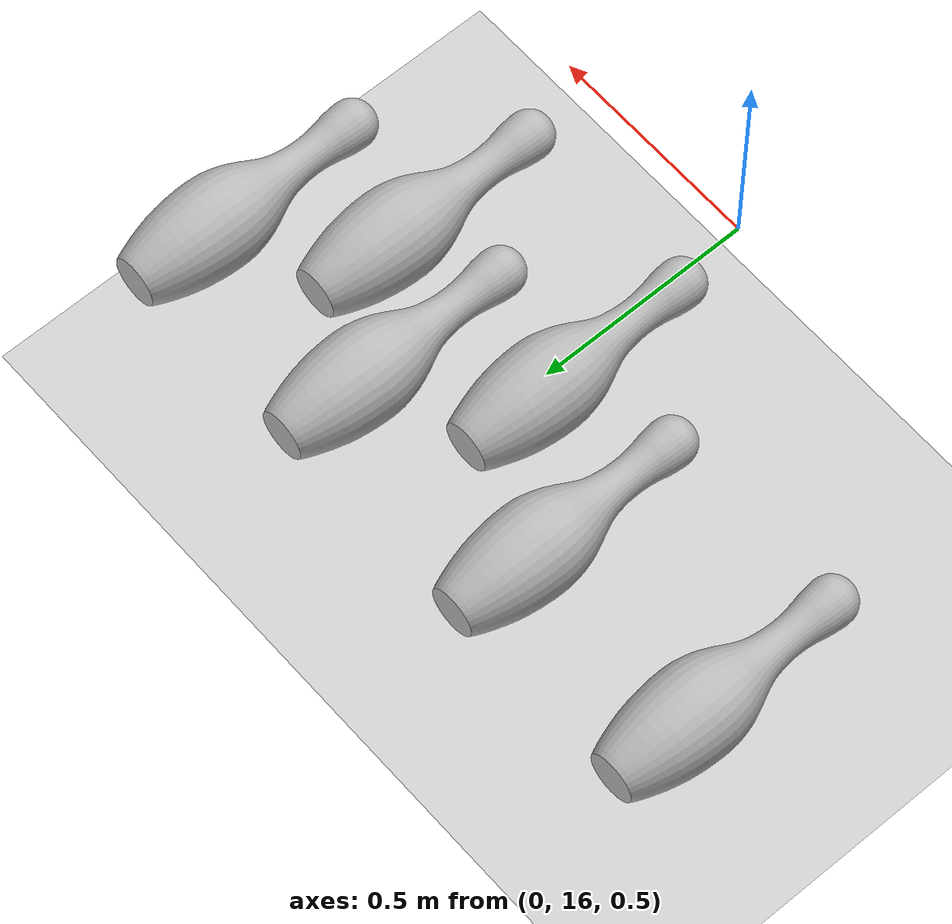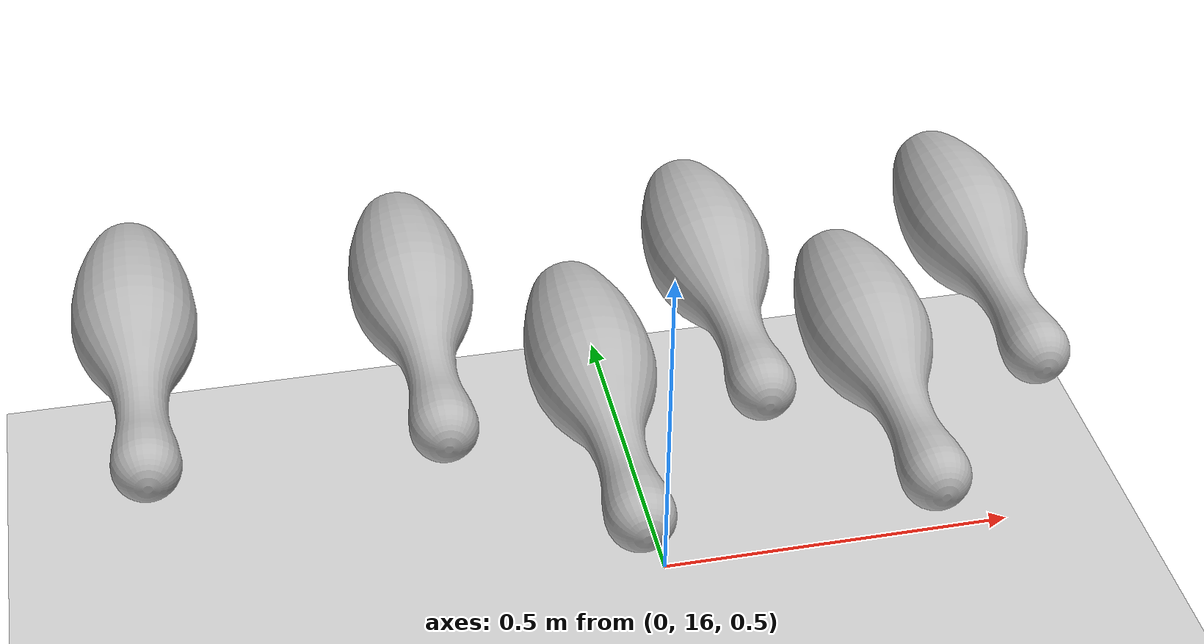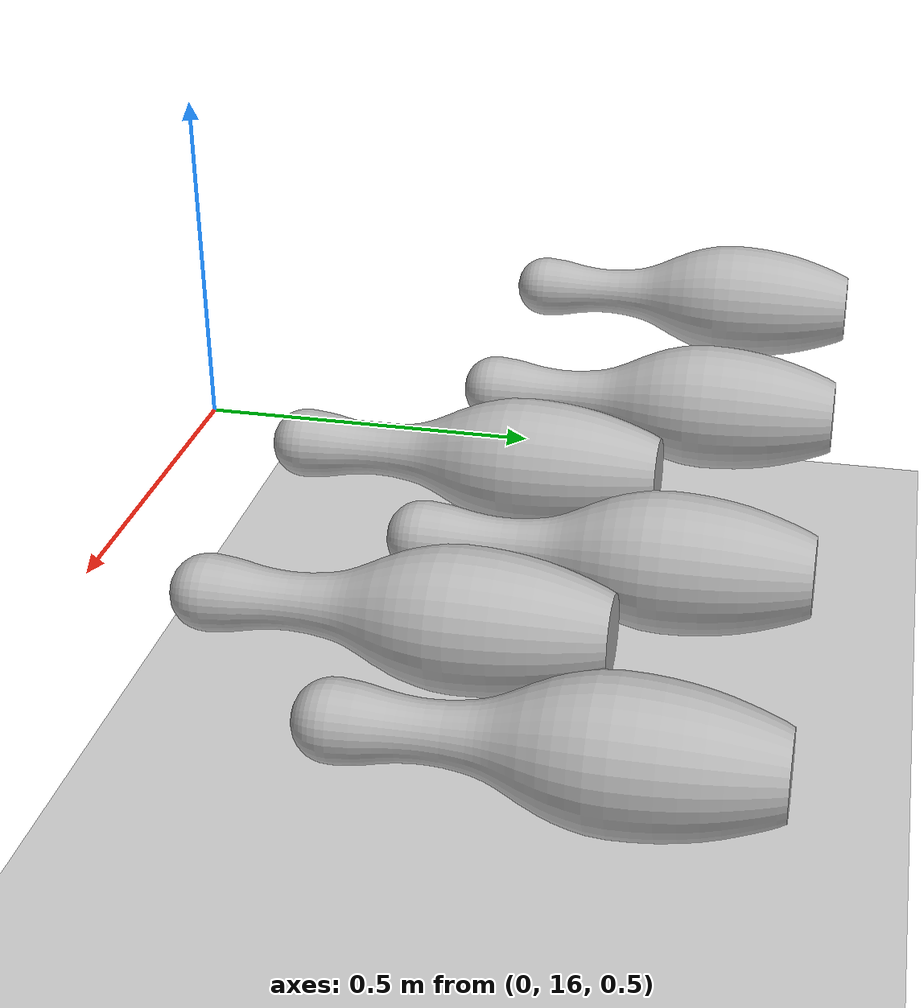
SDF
<sdf version="1.7">
 <world name="default">
  <model name="ground_plane">
   <static>1</static>
   <link name="link">
    <collision name="collision">
     <geometry><plane><normal>0 0 1</normal><size>50 100</size></plane></geometry>
     <surface>
      <contact><collide_bitmask>65535</collide_bitmask></contact>
      <friction><ode><mu>100</mu><mu2>50</mu2></ode></friction>
     </surface>
    </collision>
    <visual name="visual">
     <cast_shadows>0</cast_shadows>
     <geometry><plane><normal>0 0 1</normal><size>50 100</size></plane></geometry>
     <material>
      <script><uri>file://media/materials/scripts/gazebo.material</uri><name>Gazebo/Grey</name></script>
     </material>
    </visual>
   </link>
  </model>
  <model name="bowling_pin_clone_2">
   <link name="link_0">
    <inertial>
     <mass>1.6</mass>
     <inertia>
      <ixx>0.000212</ixx>
      <ixy>0</ixy>
      <ixz>0</ixz>
      <iyy>3.4e-05</iyy>
      <iyz>0</iyz>
      <izz>0.000212</izz>
     </inertia>
    </inertial>
    <pose>0 0 0 1.5707 -0 0</pose>
    <visual name="visual">
     <geometry>
      <mesh><uri>model://bowling_pin_black/meshes/bowling-pin-black.obj</uri><scale>1 1 1</scale></mesh>
     </geometry>
    </visual>
    <collision name="collision">
     <geometry>
      <mesh><uri>model://bowling_pin_black/meshes/bowling-pin-black.obj</uri><scale>1 1 1</scale></mesh>
     </geometry>
     <surface>
      <friction>
       <ode><mu>0.4</mu><mu2>0.4</mu2><fdir1>0 0 0</fdir1><slip1>0</slip1><slip2>0</slip2></ode>
       <torsional>
        <coefficient>1</coefficient>
        <patch_radius>0</patch_radius>
        <surface_radius>0</surface_radius>
        <use_patch_radius>1</use_patch_radius>
        <ode><slip>0</slip></ode>
       </torsional>
      </friction>
      <bounce><restitution_coefficient>0</restitution_coefficient><threshold>1e+06</threshold></bounce>
      <contact>
       <collide_without_contact>0</collide_without_contact>
       <collide_without_contact_bitmask>1</collide_without_contact_bitmask>
       <collide_bitmask>1</collide_bitmask>
       <ode>
        <soft_cfm>0</soft_cfm>
        <soft_erp>0.2</soft_erp>
        <kp>1e+13</kp>
        <kd>1</kd>
        <max_vel>1</max_vel>
        <min_depth>0</min_depth>
       </ode>
       <bullet>
        <split_impulse>1</split_impulse>
        <split_impulse_penetration_threshold>-0.01</split_impulse_penetration_threshold>
        <soft_cfm>0</soft_cfm>
        <soft_erp>0.2</soft_erp>
        <kp>1e+13</kp>
        <kd>1</kd>
       </bullet>
      </contact>
     </surface>
    </collision>
   </link>
   <static>0</static>
   <pose>0 16.5 0.458045 1.57068 0 0</pose>
  </model>
  <model name="bowling_pin_clone_3">
   <link name="link_0">
    <inertial>
     <mass>1.6</mass>
     <inertia>
      <ixx>0.000212</ixx>
      <ixy>0</ixy>
      <ixz>0</ixz>
      <iyy>3.4e-05</iyy>
      <iyz>0</iyz>
      <izz>0.000212</izz>
     </inertia>
    </inertial>
    <pose>0 0 0 1.5707 -0 0</pose>
    <visual name="visual">
     <geometry>
      <mesh><uri>model://bowling_pin_black/meshes/bowling-pin-black.obj</uri><scale>1 1 1</scale></mesh>
     </geometry>
    </visual>
    <collision name="collision">
     <geometry>
      <mesh><uri>model://bowling_pin_black/meshes/bowling-pin-black.obj</uri><scale>1 1 1</scale></mesh>
     </geometry>
     <surface>
      <friction>
       <ode><mu>0.4</mu><mu2>0.4</mu2><fdir1>0 0 0</fdir1><slip1>0</slip1><slip2>0</slip2></ode>
       <torsional>
        <coefficient>1</coefficient>
        <patch_radius>0</patch_radius>
        <surface_radius>0</surface_radius>
        <use_patch_radius>1</use_patch_radius>
        <ode><slip>0</slip></ode>
       </torsional>
      </friction>
      <bounce><restitution_coefficient>0</restitution_coefficient><threshold>1e+06</threshold></bounce>
      <contact>
       <collide_without_contact>0</collide_without_contact>
       <collide_without_contact_bitmask>1</collide_without_contact_bitmask>
       <collide_bitmask>1</collide_bitmask>
       <ode>
        <soft_cfm>0</soft_cfm>
        <soft_erp>0.2</soft_erp>
        <kp>1e+13</kp>
        <kd>1</kd>
        <max_vel>1</max_vel>
        <min_depth>0</min_depth>
       </ode>
       <bullet>
        <split_impulse>1</split_impulse>
        <split_impulse_penetration_threshold>-0.01</split_impulse_penetration_threshold>
        <soft_cfm>0</soft_cfm>
        <soft_erp>0.2</soft_erp>
        <kp>1e+13</kp>
        <kd>1</kd>
       </bullet>
      </contact>
     </surface>
    </collision>
   </link>
   <static>0</static>
   <pose>0.45 16.5 0.458061 1.57068 0 0</pose>
  </model>
  <model name="bowling_pin_clone_4">
   <link name="link_0">
    <inertial>
     <mass>1.6</mass>
     <inertia>
      <ixx>0.000212</ixx>
      <ixy>0</ixy>
      <ixz>0</ixz>
      <iyy>3.4e-05</iyy>
      <iyz>0</iyz>
      <izz>0.000212</izz>
     </inertia>
    </inertial>
    <pose>0 0 0 1.5707 -0 0</pose>
    <visual name="visual">
     <geometry>
      <mesh><uri>model://bowling_pin_black/meshes/bowling-pin-black.obj</uri><scale>1 1 1</scale></mesh>
     </geometry>
    </visual>
    <collision name="collision">
     <geometry>
      <mesh><uri>model://bowling_pin_black/meshes/bowling-pin-black.obj</uri><scale>1 1 1</scale></mesh>
     </geometry>
     <surface>
      <friction>
       <ode><mu>0.4</mu><mu2>0.4</mu2><fdir1>0 0 0</fdir1><slip1>0</slip1><slip2>0</slip2></ode>
       <torsional>
        <coefficient>1</coefficient>
        <patch_radius>0</patch_radius>
        <surface_radius>0</surface_radius>
        <use_patch_radius>1</use_patch_radius>
        <ode><slip>0</slip></ode>
       </torsional>
      </friction>
      <bounce><restitution_coefficient>0</restitution_coefficient><threshold>1e+06</threshold></bounce>
      <contact>
       <collide_without_contact>0</collide_without_contact>
       <collide_without_contact_bitmask>1</collide_without_contact_bitmask>
       <collide_bitmask>1</collide_bitmask>
       <ode>
        <soft_cfm>0</soft_cfm>
        <soft_erp>0.2</soft_erp>
        <kp>1e+13</kp>
        <kd>1</kd>
        <max_vel>1</max_vel>
        <min_depth>0</min_depth>
       </ode>
       <bullet>
        <split_impulse>1</split_impulse>
        <split_impulse_penetration_threshold>-0.01</split_impulse_penetration_threshold>
        <soft_cfm>0</soft_cfm>
        <soft_erp>0.2</soft_erp>
        <kp>1e+13</kp>
        <kd>1</kd>
       </bullet>
      </contact>
     </surface>
    </collision>
   </link>
   <static>0</static>
   <pose>-0.7 16.75 0.45798 1.57068 0 0</pose>
  </model>
  <model name="bowling_pin_clone_5">
   <link name="link_0">
    <inertial>
     <mass>1.6</mass>
     <inertia>
      <ixx>0.000212</ixx>
      <ixy>0</ixy>
      <ixz>0</ixz>
      <iyy>3.4e-05</iyy>
      <iyz>0</iyz>
      <izz>0.000212</izz>
     </inertia>
    </inertial>
    <pose>0 0 0 1.5707 -0 0</pose>
    <visual name="visual">
     <geometry>
      <mesh><uri>model://bowling_pin_black/meshes/bowling-pin-black.obj</uri><scale>1 1 1</scale></mesh>
     </geometry>
    </visual>
    <collision name="collision">
     <geometry>
      <mesh><uri>model://bowling_pin_black/meshes/bowling-pin-black.obj</uri><scale>1 1 1</scale></mesh>
     </geometry>
     <surface>
      <friction>
       <ode><mu>0.4</mu><mu2>0.4</mu2><fdir1>0 0 0</fdir1><slip1>0</slip1><slip2>0</slip2></ode>
       <torsional>
        <coefficient>1</coefficient>
        <patch_radius>0</patch_radius>
        <surface_radius>0</surface_radius>
        <use_patch_radius>1</use_patch_radius>
        <ode><slip>0</slip></ode>
       </torsional>
      </friction>
      <bounce><restitution_coefficient>0</restitution_coefficient><threshold>1e+06</threshold></bounce>
      <contact>
       <collide_without_contact>0</collide_without_contact>
       <collide_without_contact_bitmask>1</collide_without_contact_bitmask>
       <collide_bitmask>1</collide_bitmask>
       <ode>
        <soft_cfm>0</soft_cfm>
        <soft_erp>0.2</soft_erp>
        <kp>1e+13</kp>
        <kd>1</kd>
        <max_vel>1</max_vel>
        <min_depth>0</min_depth>
       </ode>
       <bullet>
        <split_impulse>1</split_impulse>
        <split_impulse_penetration_threshold>-0.01</split_impulse_penetration_threshold>
        <soft_cfm>0</soft_cfm>
        <soft_erp>0.2</soft_erp>
        <kp>1e+13</kp>
        <kd>1</kd>
       </bullet>
      </contact>
     </surface>
    </collision>
   </link>
   <static>0</static>
   <pose>-0.25 16.75 0.457973 1.57068 0 0</pose>
  </model>
  <model name="bowling_pin_clone_6">
   <link name="link_0">
    <inertial>
     <mass>1.6</mass>
     <inertia>
      <ixx>0.000212</ixx>
      <ixy>0</ixy>
      <ixz>0</ixz>
      <iyy>3.4e-05</iyy>
      <iyz>0</iyz>
      <izz>0.000212</izz>
     </inertia>
    </inertial>
    <pose>0 0 0 1.5707 -0 0</pose>
    <visual name="visual">
     <geometry>
      <mesh><uri>model://bowling_pin_black/meshes/bowling-pin-black.obj</uri><scale>1 1 1</scale></mesh>
     </geometry>
    </visual>
    <collision name="collision">
     <geometry>
      <mesh><uri>model://bowling_pin_black/meshes/bowling-pin-black.obj</uri><scale>1 1 1</scale></mesh>
     </geometry>
     <surface>
      <friction>
       <ode><mu>0.4</mu><mu2>0.4</mu2><fdir1>0 0 0</fdir1><slip1>0</slip1><slip2>0</slip2></ode>
       <torsional>
        <coefficient>1</coefficient>
        <patch_radius>0</patch_radius>
        <surface_radius>0</surface_radius>
        <use_patch_radius>1</use_patch_radius>
        <ode><slip>0</slip></ode>
       </torsional>
      </friction>
      <bounce><restitution_coefficient>0</restitution_coefficient><threshold>1e+06</threshold></bounce>
      <contact>
       <collide_without_contact>0</collide_without_contact>
       <collide_without_contact_bitmask>1</collide_without_contact_bitmask>
       <collide_bitmask>1</collide_bitmask>
       <ode>
        <soft_cfm>0</soft_cfm>
        <soft_erp>0.2</soft_erp>
        <kp>1e+13</kp>
        <kd>1</kd>
        <max_vel>1</max_vel>
        <min_depth>0</min_depth>
       </ode>
       <bullet>
        <split_impulse>1</split_impulse>
        <split_impulse_penetration_threshold>-0.01</split_impulse_penetration_threshold>
        <soft_cfm>0</soft_cfm>
        <soft_erp>0.2</soft_erp>
        <kp>1e+13</kp>
        <kd>1</kd>
       </bullet>
      </contact>
     </surface>
    </collision>
   </link>
   <static>0</static>
   <pose>0.25 16.75 0.457973 1.57068 0 0</pose>
  </model>
  <model name="bowling_pin_clone_7">
   <link name="link_0">
    <inertial>
     <mass>1.6</mass>
     <inertia>
      <ixx>0.000212</ixx>
      <ixy>0</ixy>
      <ixz>0</ixz>
      <iyy>3.4e-05</iyy>
      <iyz>0</iyz>
      <izz>0.000212</izz>
     </inertia>
    </inertial>
    <pose>0 0 0 1.5707 -0 0</pose>
    <visual name="visual">
     <geometry>
      <mesh><uri>model://bowling_pin_black/meshes/bowling-pin-black.obj</uri><scale>1 1 1</scale></mesh>
     </geometry>
    </visual>
    <collision name="collision">
     <geometry>
      <mesh><uri>model://bowling_pin_black/meshes/bowling-pin-black.obj</uri><scale>1 1 1</scale></mesh>
     </geometry>
     <surface>
      <friction>
       <ode><mu>0.4</mu><mu2>0.4</mu2><fdir1>0 0 0</fdir1><slip1>0</slip1><slip2>0</slip2></ode>
       <torsional>
        <coefficient>1</coefficient>
        <patch_radius>0</patch_radius>
        <surface_radius>0</surface_radius>
        <use_patch_radius>1</use_patch_radius>
        <ode><slip>0</slip></ode>
       </torsional>
      </friction>
      <bounce><restitution_coefficient>0</restitution_coefficient><threshold>1e+06</threshold></bounce>
      <contact>
       <collide_without_contact>0</collide_without_contact>
       <collide_without_contact_bitmask>1</collide_without_contact_bitmask>
       <collide_bitmask>1</collide_bitmask>
       <ode>
        <soft_cfm>0</soft_cfm>
        <soft_erp>0.2</soft_erp>
        <kp>1e+13</kp>
        <kd>1</kd>
        <max_vel>1</max_vel>
        <min_depth>0</min_depth>
       </ode>
       <bullet>
        <split_impulse>1</split_impulse>
        <split_impulse_penetration_threshold>-0.01</split_impulse_penetration_threshold>
        <soft_cfm>0</soft_cfm>
        <soft_erp>0.2</soft_erp>
        <kp>1e+13</kp>
        <kd>1</kd>
       </bullet>
      </contact>
     </surface>
    </collision>
   </link>
   <static>0</static>
   <pose>0.7 16.75 0.458003 1.57068 0 0</pose>
  </model>
 </world>
</sdf>
